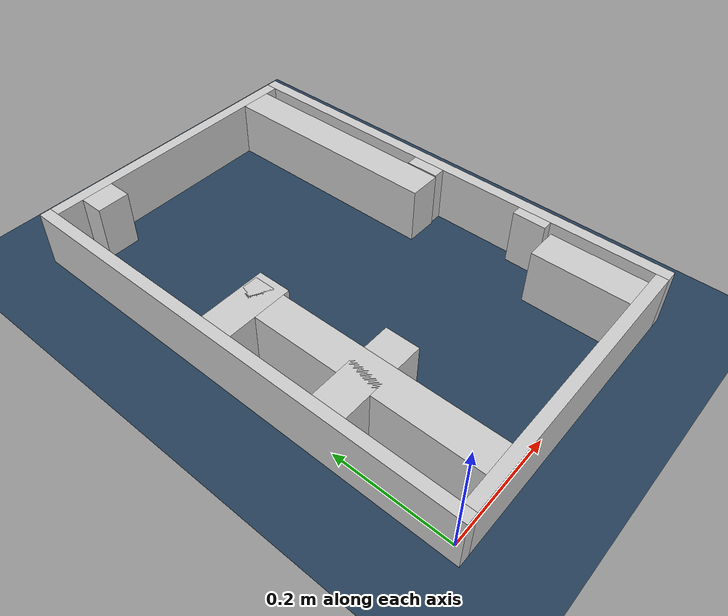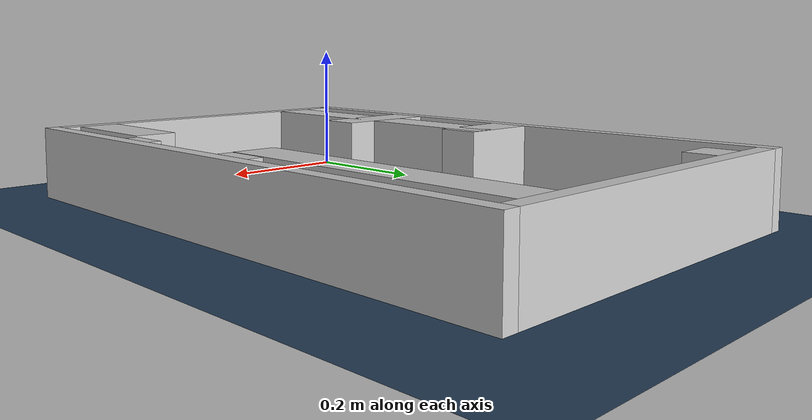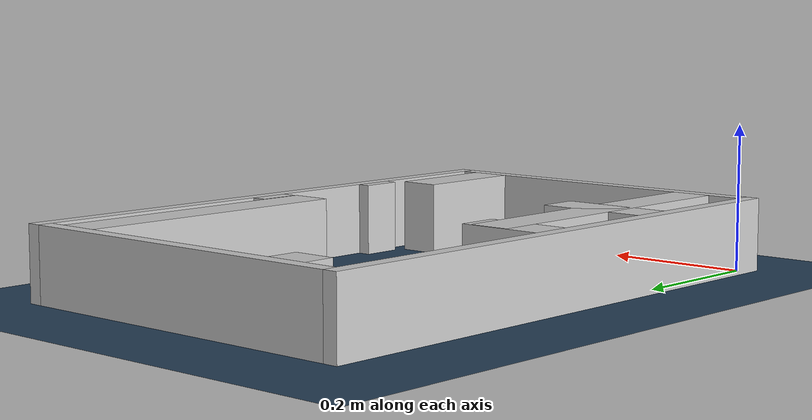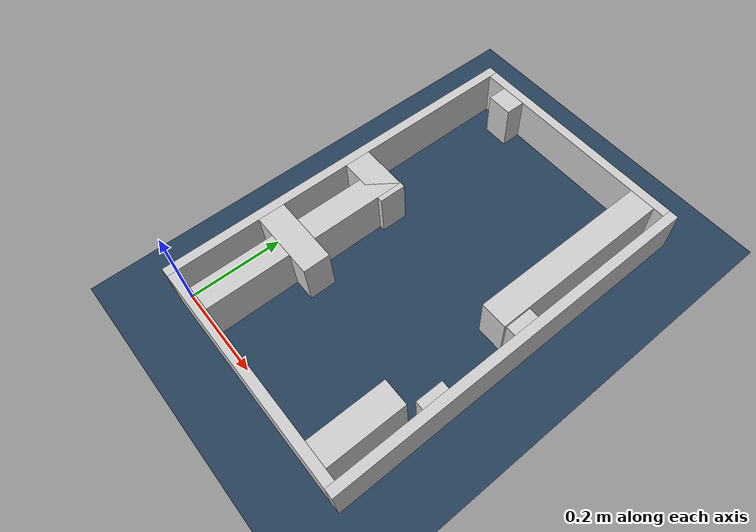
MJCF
<?xml version="1.0" ?>
<mujoco model="generated_real_template">
  <compiler angle="degree"/>
  <option timestep="0.002" integrator="implicitfast" iterations="100" cone="elliptic"/>
  <default>
    <geom density="1"/>
  </default>
  <asset>
    <texture builtin="gradient" height="3072" rgb1="0.3 0.5 0.7" rgb2="0 0 0" type="skybox" width="512"/>
    <texture builtin="checker" height="300" mark="edge" markrgb="0.8 0.8 0.8" name="groundplane" rgb1="0.2 0.3 0.4" rgb2="0.1 0.2 0.3" type="2d" width="300"/>
    <material name="groundplane" reflectance="0.2" texrepeat="5 5" texture="groundplane" texuniform="true"/>
  </asset>
  <worldbody>
    <light dir="0 0 -1" directional="true" pos="0 0 1.5"/>
    <geom name="floor" type="plane" condim="4" friction="0.5 0.005 0.001" material="groundplane" size="0 0 0.05"/>
    <body name="walls">
      <geom name="wall_boundary_left" type="box" condim="4" friction="1.0 0.005 0.0001" rgba="0.8 0.8 0.8 1" pos="-0.010000 0.387500 0.050000" euler="0 0 0.000000" size="0.010000 0.407500 0.050000"/>
      <geom name="wall_boundary_right" type="box" condim="4" friction="1.0 0.005 0.0001" rgba="0.8 0.8 0.8 1" pos="0.500000 0.387500 0.050000" euler="0 0 0.000000" size="0.010000 0.407500 0.050000"/>
      <geom name="wall_boundary_bottom" type="box" condim="4" friction="1.0 0.005 0.0001" rgba="0.8 0.8 0.8 1" pos="0.245000 -0.010000 0.050000" euler="0 0 0.000000" size="0.245000 0.010000 0.050000"/>
      <geom name="wall_boundary_top" type="box" condim="4" friction="1.0 0.005 0.0001" rgba="0.8 0.8 0.8 1" pos="0.245000 0.785000 0.050000" euler="0 0 0.000000" size="0.245000 0.010000 0.050000"/>
      <geom name="wall_inner_1_1" type="box" condim="4" friction="1.0 0.005 0.0001" rgba="0.8 0.8 0.8 1" pos="0.075563 0.204292 0.050000" euler="0 0 0.000000" size="0.075563 0.028500 0.050000"/>
      <geom name="wall_inner_1_2" type="box" condim="4" friction="1.0 0.005 0.0001" rgba="0.8 0.8 0.8 1" pos="0.481096 0.204292 0.050000" euler="0 0 0.000000" size="0.008904 0.028500 0.050000"/>
      <geom name="wall_inner_2_1" type="box" condim="4" friction="1.0 0.005 0.0001" rgba="0.8 0.8 0.8 1" pos="0.075502 0.218439 0.050000" euler="0 0 90.000000" size="0.218439 0.028500 0.050000"/>
      <geom name="wall_inner_2_2" type="box" condim="4" friction="1.0 0.005 0.0001" rgba="0.8 0.8 0.8 1" pos="0.075502 0.753718 0.050000" euler="0 0 90.000000" size="0.021282 0.028500 0.050000"/>
      <geom name="wall_inner_3_1" type="box" condim="4" friction="1.0 0.005 0.0001" rgba="0.8 0.8 0.8 1" pos="0.057694 0.410833 0.050000" euler="0 0 0.000000" size="0.057694 0.028500 0.050000"/>
      <geom name="wall_inner_3_2" type="box" condim="4" friction="1.0 0.005 0.0001" rgba="0.8 0.8 0.8 1" pos="0.479430 0.410833 0.050000" euler="0 0 0.000000" size="0.010570 0.028500 0.050000"/>
      <geom name="wall_inner_4_1" type="box" condim="4" friction="1.0 0.005 0.0001" rgba="0.8 0.8 0.8 1" pos="0.438051 0.080906 0.050000" euler="0 0 90.000000" size="0.080906 0.028500 0.050000"/>
      <geom name="wall_inner_4_2" type="box" condim="4" friction="1.0 0.005 0.0001" rgba="0.8 0.8 0.8 1" pos="0.438051 0.577693 0.050000" euler="0 0 90.000000" size="0.197307 0.028500 0.050000"/>
    </body>
  </worldbody>
</mujoco>
